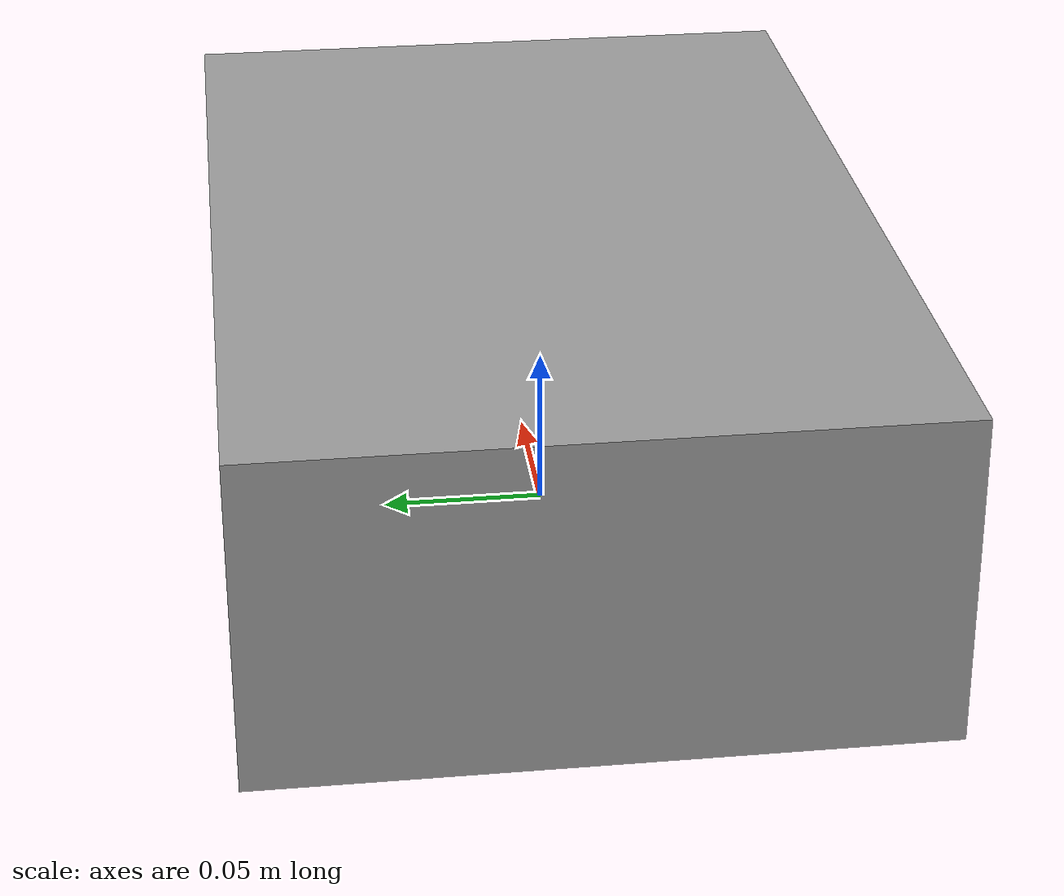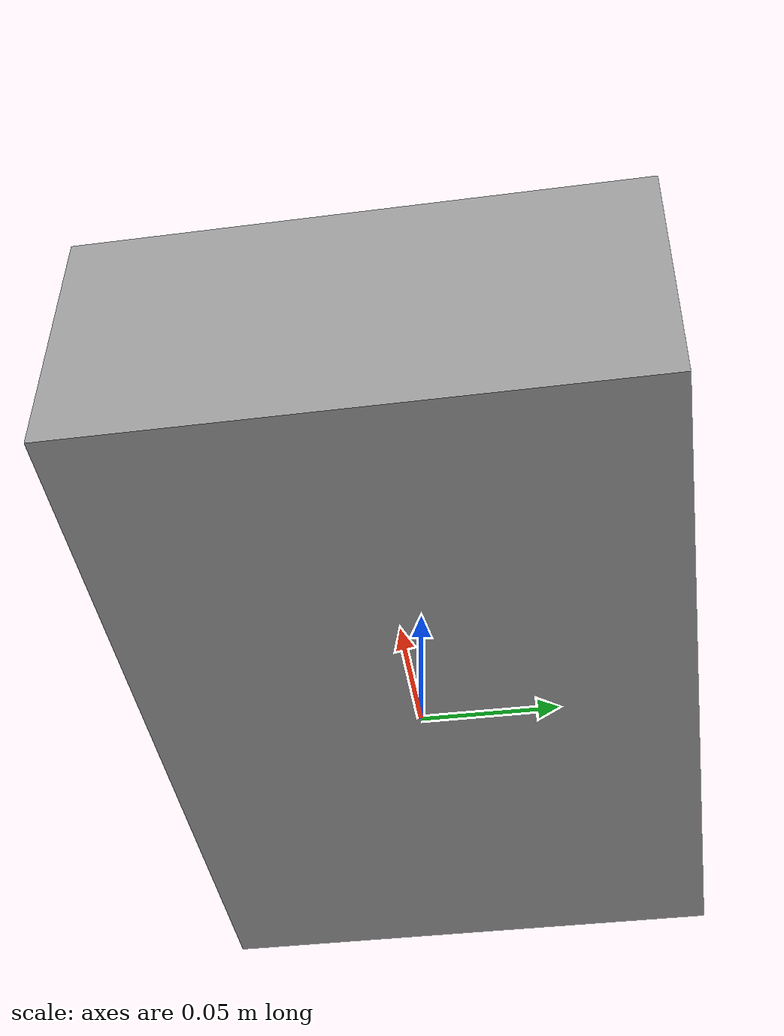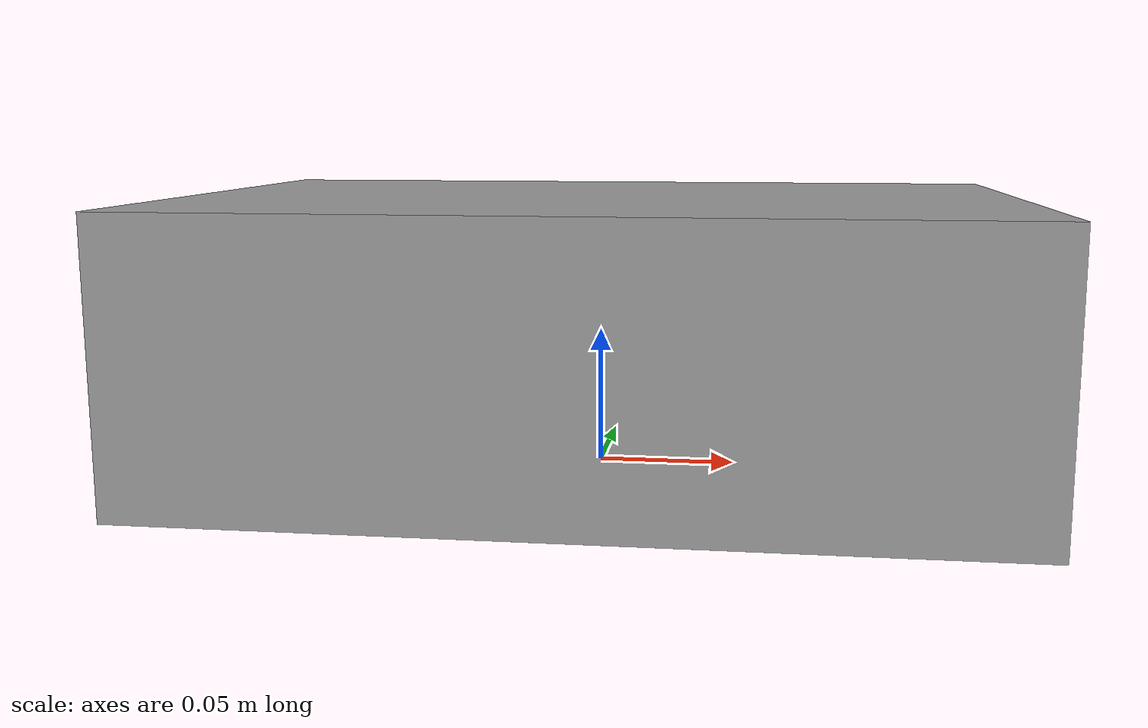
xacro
<?xml version="1.0"?>
<robot name="axon" xmlns:xacro="http://www.ros.org/wiki/xacro">
  <link name="base_link">
    <inertial>
      <origin xyz="0 0 0" rpy="0 0 0" />
      <mass value="1.0" />
      <inertia ixx="0.01" ixy="0.0" ixz="0.0" iyy="0.01" iyz="0.0" izz="0.01" />
    </inertial>
    <visual>
      <origin xyz="0 0 0" rpy="0 0 0" />
      <geometry>
        <box size="0.3 0.2 0.1" />
      </geometry>
      <material name="gray">
        <color rgba="0.6 0.6 0.6 1.0" />
      </material>
    </visual>
    <collision>
      <origin xyz="0 0 0" rpy="0 0 0" />
      <geometry>
        <box size="0.3 0.2 0.1" />
      </geometry>
    </collision>
  </link>

  <link name="base_footprint" />
  <joint name="base_footprint_joint" type="fixed">
    <parent link="base_footprint" />
    <child link="base_link" />
    <origin xyz="0 0 0.05" rpy="0 0 0" />
  </joint>

  <!-- Placeholder sensor frames -->
  <link name="imu_link" />
  <joint name="imu_joint" type="fixed">
    <parent link="base_link" />
    <child link="imu_link" />
    <origin xyz="0 0 0.05" rpy="0 0 0" />
  </joint>

  <link name="camera_link" />
  <joint name="camera_joint" type="fixed">
    <parent link="base_link" />
    <child link="camera_link" />
    <origin xyz="0.1 0 0.1" rpy="0 0 0" />
  </joint>
</robot>
